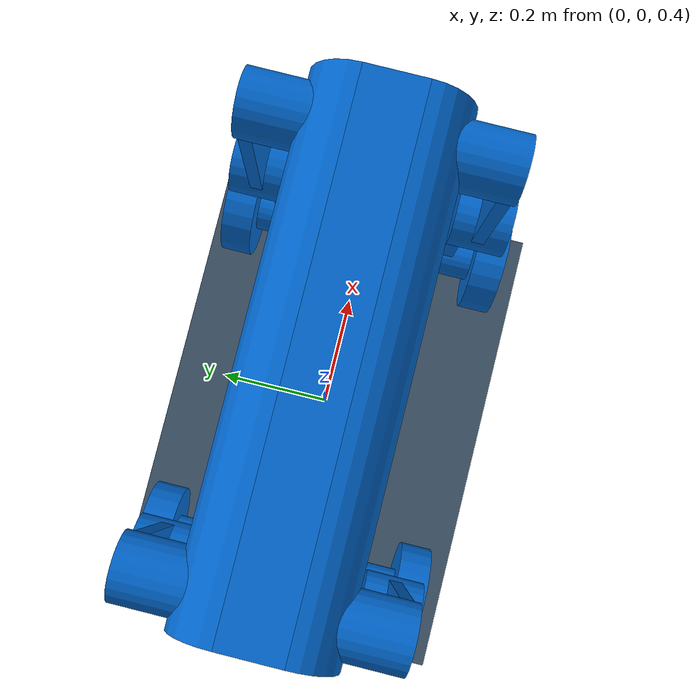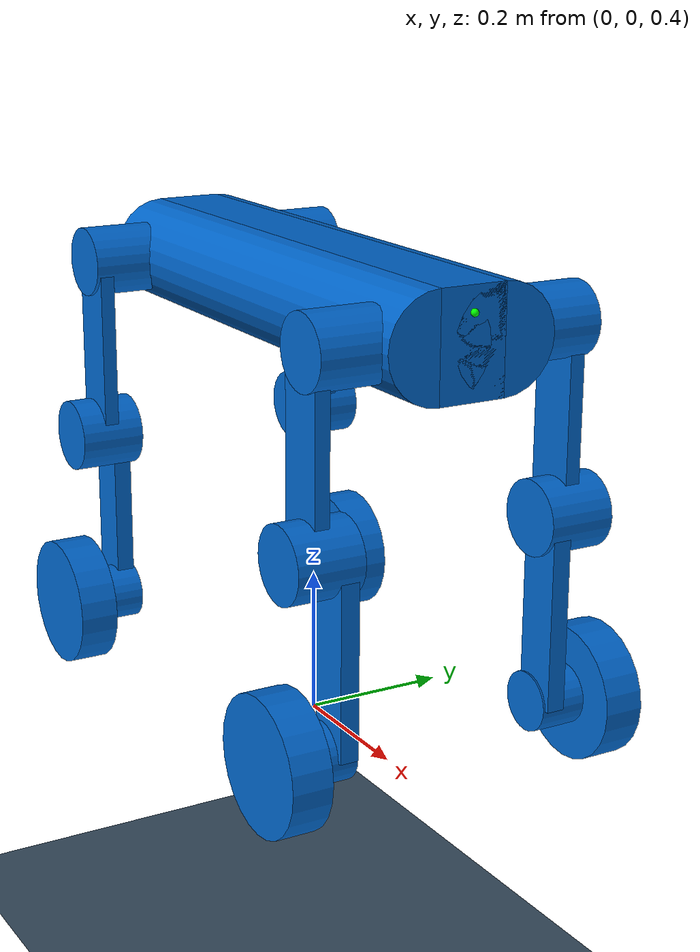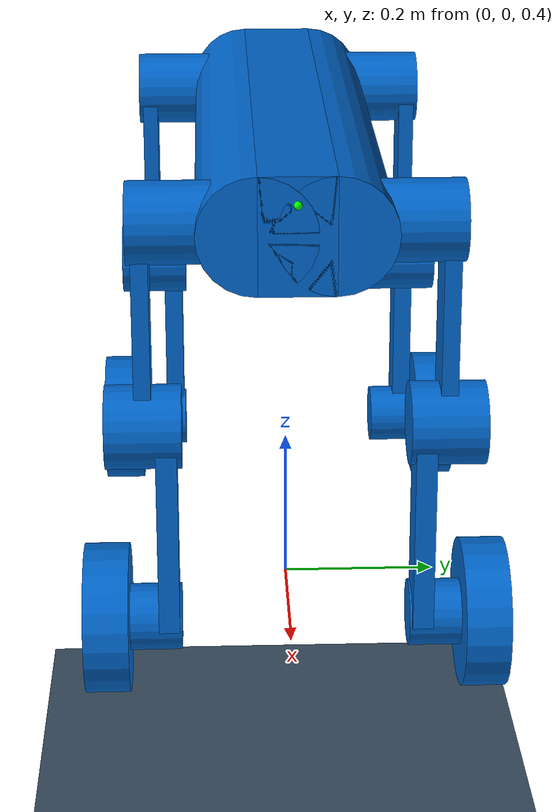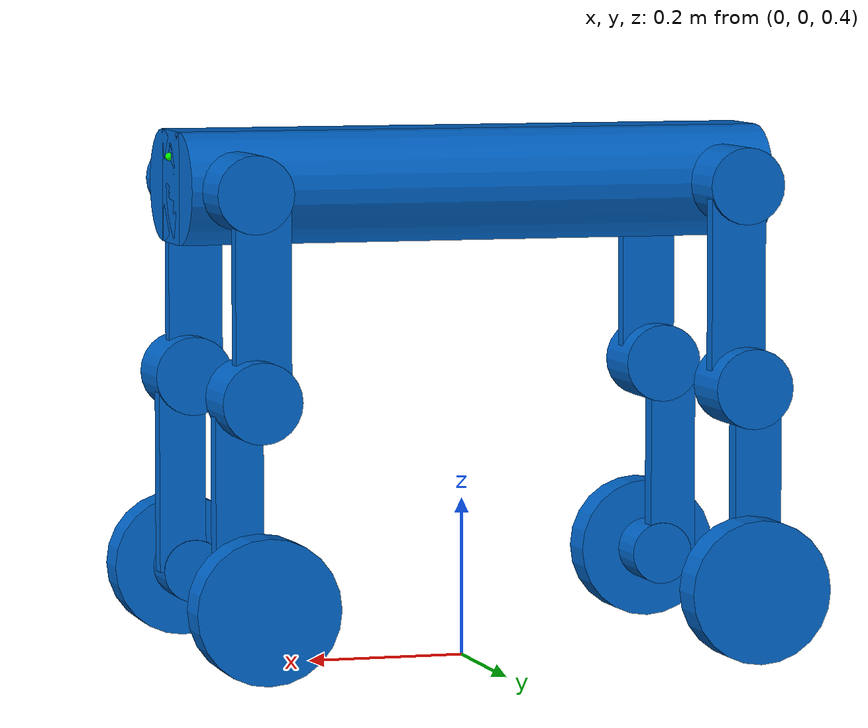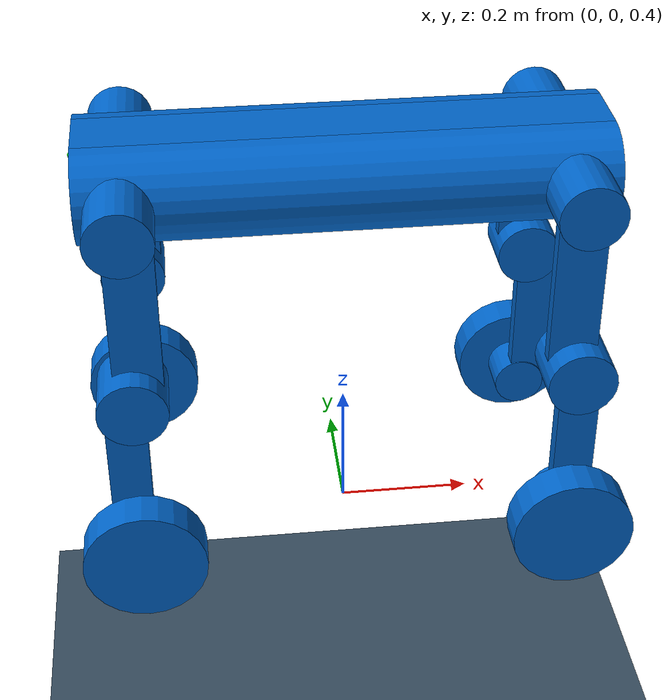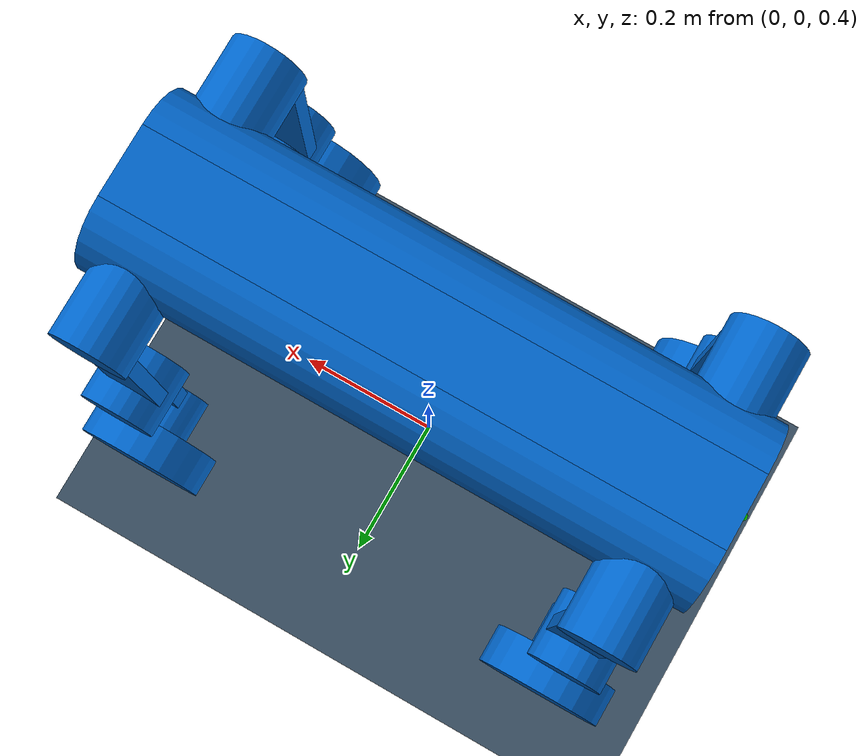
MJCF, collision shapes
<mujoco model="m20_scene">
  <include file="../model/robot.xml"/>
  <compiler meshdir="../model/assets"/>

  <statistic center="0 0 0.1" extent="1.0"/>
  <visual>
    <headlight diffuse="0.82 0.86 0.9" ambient="0.42 0.48 0.54" specular="0.15 0.15 0.18"/>
    <global azimuth="120" elevation="-20"/>
  </visual>
  <asset>
    <texture type="skybox" builtin="gradient" rgb1="0.3 0.5 0.7" rgb2="0 0 0" width="512" height="3072"/>
    <texture type="2d" name="groundplane" builtin="checker" mark="edge" rgb1="0.28 0.38 0.46" rgb2="0.16 0.23 0.30" markrgb="0.56 0.64 0.70" width="300" height="300"/>
    <material name="groundplane" texture="groundplane" texuniform="true" texrepeat="5 5" reflectance="0.2"/>
  </asset>
  <worldbody>
    <light pos="0 0 3" dir="0 0 -1" directional="true"/>
    <geom name="floor" size="0 0 0.05" type="plane" material="groundplane" friction="0.8 0.02 0.01"/>
  </worldbody>
</mujoco>

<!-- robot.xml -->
<mujoco model="M20">

    <default>
        <default class="robot">
            <default class="motor">
                <joint/>
                <motor/>
            </default>
            <default class="visual">
                <geom material="default_material" contype="0" conaffinity="0" group="2"/>
            </default>
            <default class="collision">
                <geom material="collision_material" condim="3" contype="1" conaffinity="1" solref="0.005 1"
                      friction="1 0.01 0.001" density="0" group="1"/>
            </default>
        </default>
    </default>

    <compiler angle="radian" meshdir="assets" />
  <!-- timestep 不在此声明：运行时统一取 contract_v3.json control.physics_hz -->
  <option gravity="0 0 -9.81" integrator="implicitfast" cone="elliptic" impratio="100" />
    <compiler autolimits="true"/>

    <asset>
        <material name="default_material" rgba="0.7 0.7 0.7 1"/>
        <material name="collision_material" rgba="0.0 0.4 0.8 0.2"/>
        <mesh name="base_link" file="base_link.STL"/>
        <mesh name="fl_hipx" file="fl_hipx.STL"/>
        <mesh name="fl_hipy" file="fl_hipy.STL"/>
        <mesh name="fl_knee" file="fl_knee.STL"/>
        <mesh name="fl_wheel" file="fl_wheel.STL"/>
        <mesh name="fr_hipx" file="fr_hipx.STL"/>
        <mesh name="fr_hipy" file="fr_hipy.STL"/>
        <mesh name="fr_knee" file="fr_knee.STL"/>
        <mesh name="fr_wheel" file="fr_wheel.STL"/>
        <mesh name="hl_hipx" file="hl_hipx.STL"/>
        <mesh name="hl_hipy" file="hl_hipy.STL"/>
        <mesh name="hl_knee" file="hl_knee.STL"/>
        <mesh name="hl_wheel" file="hl_wheel.STL"/>
        <mesh name="hr_hipx" file="hr_hipx.STL"/>
        <mesh name="hr_hipy" file="hr_hipy.STL"/>
        <mesh name="hr_knee" file="hr_knee.STL"/>
        <mesh name="hr_wheel" file="hr_wheel.STL"/>
        <texture name="texplane" type="2d" builtin="checker" rgb1=".2 .3 .4" rgb2=".1 0.15 0.2"
                 width="512" height="512"/>
        <material name='MatPlane' reflectance='0.3' texture="texplane" texrepeat="1 1" texuniform="true"/>
    </asset>

    <worldbody>
        <!-- 灯光 -->
        <light directional="true" pos="-0.5 0.5 3" dir="0 0 -1"/>

        <body name="base_link" pos="0 0. 1." quat="1 0 0 0" childclass="robot">
            <freejoint name="floating_base"/>
            <inertial pos="0.00355105878308153 0.0016507579200937 -0.00346462146571654"
                      quat="1 0 0 0"
                      mass="15.882" diaginertia="0.087919 0.533522 0.563492"/>

            <site name="imu_site" pos="0.0632 -0.0268 -0.0435" size="0.005" rgba="1 0 0 1"/>
            <site name="base_site" pos="0 0 0" quat="1 0 0 0"/>

            <!-- CA9B sensor frames. Translations are converted from millimeters to meters. -->
            <site name="front_camera" pos="0.37646 0 0.03738" size="0.005" rgba="0 1 0 1"/>
            <site name="rear_camera" pos="-0.37646 0 0.03738" size="0.005" rgba="0 1 0 1"/>
            <site name="front_lidar" pos="0.32028 0 -0.013" size="0.005" rgba="0 0 1 1"/>
            <site name="rear_lidar" pos="-0.32028 0 -0.013" size="0.005" rgba="0 0 1 1"/>

            <geom type="mesh" mesh="base_link" class="visual"/>
            <geom size="0.375 0.045 0.07" type="box" class="collision"/>
            <geom size="0.07 0.375" pos="0 0.045 0" quat="0.707107 0 0.707107 0" type="cylinder" class="collision"/>
            <geom size="0.07 0.375" pos="0 -0.045 0" quat="0.707107 0 0.707107 0" type="cylinder" class="collision"/>

            <body name="fl_hipx" pos="0.3141 0.0685 0">
                <inertial pos="-0.0111893 0.00891693 0.000405666" quat="0.581628 0.481707 0.465607 0.461387"
                          mass="0.259964"
                          diaginertia="0.000374402 0.000286289 0.000179309"/>
                <joint name="fl_hipx_joint" pos="0 0 0" axis="-1 0 0" range="-0.436 0.611"
                       actuatorfrcrange="-76.4 76.4" armature="0.01" frictionloss="0"/>
                <geom type="mesh" mesh="fl_hipx" class="visual"/>
                <geom size="0.048 0.07" pos="0 0.055 0" quat="0.707107 0.707107 0 0" type="cylinder" class="collision"/>
                <body name="fl_hipy">
                    <inertial pos="-0.00199375 0.098439 -0.130664" quat="0.6754 -0.0565887 0.0622156 0.73264"
                              mass="2.618"
                              diaginertia="0.0410181 0.0408067 0.00297328"/>
                    <joint name="fl_hipy_joint" pos="0 0 0" axis="0 -1 0" range="-2.286 2.583"
                           actuatorfrcrange="-76.4 76.4" armature="0.01" frictionloss="0"/>
                    <geom type="mesh" mesh="fl_hipy" class="visual"/>
                    <geom size="0.035 0.01 0.125" pos="-0.01 0.11 -0.125" type="box" class="collision"/>
                    <geom size="0.05 0.045" pos="0 0.11 -0.25" quat="0.707107 0.707107 0 0" type="cylinder"
                          class="collision"/>
                    <body name="fl_knee" pos="0 0.0984 -0.25">
                        <inertial pos="0.00341917 0.00269124 -0.181265" quat="0.633405 -0.0508555 0.0475887 0.77068"
                                  mass="1.145" diaginertia="0.0121304 0.0117245 0.000948105"/>
                        <joint name="fl_knee_joint" pos="0 0 0" axis="0 -1 0" range="-2.809 2.792"
                               actuatorfrcrange="-76.4 76.4" armature="0.01" frictionloss="0"/>
                        <geom type="mesh" mesh="fl_knee" class="visual"/>
                        <geom size="0.03 0.0125 0.125" pos="0.015 -0.015 -0.125" type="box" class="collision"/>
                        <geom size="0.04 0.05" pos="0 0.02 -0.25" quat="0.707107 0.707107 0 0" type="cylinder"
                              class="collision"/>
                        <body name="fl_wheel" pos="0 0.059676 -0.25">
                            <inertial pos="-3.11398e-07 0.000279002 5.70329e-07" quat="0.707107 0 0 0.707107"
                                      mass="0.638"
                                      diaginertia="0.002853 0.001535 0.001535"/>
                            <joint name="fl_wheel_joint" pos="0 0 0" axis="0 -1 0" actuatorfrcrange="-21.6 21.6" armature="0.01" frictionloss="0"/>
                            <geom type="mesh" mesh="fl_wheel" class="visual"/>
                            <geom size="0.09 0.027" quat="0.707107 0.707107 0 0" type="cylinder" class="collision"/>
                        </body>
                    </body>
                </body>
            </body>
            <body name="fr_hipx" pos="0.3141 -0.0685 0">
                <inertial pos="-0.0110901 -0.00875035 0.000521421" quat="0.461387 0.465607 0.481707 0.581628"
                          mass="0.259964" diaginertia="0.000374402 0.000286289 0.000179309"/>
                <joint name="fr_hipx_joint" pos="0 0 0" axis="-1 0 0" range="-0.611 0.436"
                       actuatorfrcrange="-76.4 76.4" armature="0.01" frictionloss="0"/>
                <geom type="mesh" mesh="fr_hipx" class="visual"/>
                <geom size="0.048 0.07" pos="0 -0.055 0" quat="0.707107 0.707107 0 0" type="cylinder"
                      class="collision"/>
                <body name="fr_hipy">
                    <inertial pos="-0.00229992 -0.0989709 -0.130925" quat="0.6964 0.0586688 -0.0587886 0.712831"
                              mass="2.618" diaginertia="0.0407542 0.040538 0.00301281"/>
                    <joint name="fr_hipy_joint" pos="0 0 0" axis="0 -1 0" range="-2.286 2.583"
                           actuatorfrcrange="-76.4 76.4" armature="0.01" frictionloss="0"/>
                    <geom type="mesh" mesh="fr_hipy" class="visual"/>
                    <geom size="0.035 0.01 0.125" pos="-0.01 -0.11 -0.125" type="box" class="collision"/>
                    <geom size="0.05 0.045" pos="0 -0.11 -0.25" quat="0.707107 0.707107 0 0" type="cylinder"
                          class="collision"/>
                    <body name="fr_knee" pos="0 -0.0984 -0.25">
                        <inertial pos="0.00354945 -0.00247884 -0.180089" quat="0.769194 0.0472982 -0.0504711 0.635261"
                                  mass="1.145" diaginertia="0.0122564 0.0118448 0.000951718"/>
                        <joint name="fr_knee_joint" pos="0 0 0" axis="0 -1 0" range="-2.809 2.792"
                               actuatorfrcrange="-76.4 76.4" armature="0.01" frictionloss="0"/>
                        <geom type="mesh" mesh="fr_knee" class="visual"/>
                        <geom size="0.03 0.0125 0.125" pos="0.015 0.015 -0.125" type="box" class="collision"/>
                        <geom size="0.04 0.05" pos="0 -0.02 -0.25" quat="0.707107 0.707107 0 0" type="cylinder"
                              class="collision"/>
                        <body name="fr_wheel" pos="0 -0.059676 -0.25">
                            <inertial pos="-6.47327e-07 -0.000279012 -4.6242e-08" quat="0.707107 0 0 0.707107"
                                      mass="0.638"
                                      diaginertia="0.002853 0.001535 0.001535"/>
                            <joint name="fr_wheel_joint" pos="0 0 0" axis="0 -1 0" actuatorfrcrange="-21.6 21.6" armature="0.01" frictionloss="0"/>
                            <geom type="mesh" mesh="fr_wheel" class="visual"/>
                            <geom size="0.09 0.027" quat="0.707107 0.707107 0 0" type="cylinder" class="collision"/>
                        </body>
                    </body>
                </body>
            </body>
            <body name="hl_hipx" pos="-0.3141 0.0685 0">
                <inertial pos="0.0110901 0.00875014 0.000524884" quat="0.465607 0.461387 0.581628 0.481707"
                          mass="0.259964"
                          diaginertia="0.000374402 0.000286289 0.000179309"/>
                <joint name="hl_hipx_joint" pos="0 0 0" axis="-1 0 0" range="-0.436 0.611"
                       actuatorfrcrange="-76.4 76.4" armature="0.01" frictionloss="0"/>
                <geom type="mesh" mesh="hl_hipx" class="visual"/>
                <geom size="0.048 0.07" pos="0 0.055 0" quat="0.707107 0.707107 0 0" type="cylinder" class="collision"/>
                <body name="hl_hipy">
                    <inertial pos="0.00204343 0.0990227 -0.130697" quat="0.750359 -0.0628584 0.0546506 0.655761"
                              mass="2.618" diaginertia="0.0408376 0.0406211 0.00299727"/>
                    <joint name="hl_hipy_joint" pos="0 0 0" axis="0 -1 0" range="-2.583 2.286"
                           actuatorfrcrange="-76.4 76.4" armature="0.01" frictionloss="0"/>
                    <geom type="mesh" mesh="hl_hipy" class="visual"/>
                    <geom size="0.035 0.01 0.125" pos="0.01 0.11 -0.125" type="box" class="collision"/>
                    <geom size="0.05 0.045" pos="0 0.11 -0.25" quat="0.707107 0.707107 0 0" type="cylinder"
                          class="collision"/>
                    <body name="hl_knee" pos="0 0.0984 -0.25">
                        <inertial pos="-0.00354945 0.00247885 -0.180089" quat="0.769194 -0.0472982 0.0504711 0.635261"
                                  mass="1.145" diaginertia="0.0122564 0.0118448 0.000951718"/>
                        <joint name="hl_knee_joint" pos="0 0 0" axis="0 -1 0" range="-2.792 2.809"
                               actuatorfrcrange="-76.4 76.4" armature="0.01" frictionloss="0"/>
                        <geom type="mesh" mesh="hl_knee" class="visual"/>
                        <geom size="0.03 0.0125 0.125" pos="-0.015 0.015 -0.125" type="box" class="collision"/>
                        <geom size="0.04 0.05" pos="0 0.02 -0.25" quat="0.707107 0.707107 0 0" type="cylinder"
                              class="collision"/>
                        <body name="hl_wheel" pos="0 0.059676 -0.25">
                            <inertial pos="-6.07889e-07 0.000279009 2.1049e-07" quat="0.707107 0 0 0.707107"
                                      mass="0.638"
                                      diaginertia="0.002853 0.001535 0.001535"/>
                            <joint name="hl_wheel_joint" pos="0 0 0" axis="0 -1 0" actuatorfrcrange="-21.6 21.6" armature="0.01" frictionloss="0"/>
                            <geom type="mesh" mesh="hl_wheel" class="visual"/>
                            <geom size="0.09 0.027" quat="0.707107 0.707107 0 0" type="cylinder" class="collision"/>
                        </body>
                    </body>
                </body>
            </body>
            <body name="hr_hipx" pos="-0.3141 -0.0685 0">
                <inertial pos="0.0110902 -0.00875012 0.000524937" quat="0.481707 0.581628 0.461387 0.465607"
                          mass="0.259964"
                          diaginertia="0.000374402 0.000286289 0.000179309"/>
                <joint name="hr_hipx_joint" pos="0 0 0" axis="-1 0 0" range="-0.611 0.436"
                       actuatorfrcrange="-76.4 76.4" armature="0.01" frictionloss="0"/>
                <geom type="mesh" mesh="hr_hipx" class="visual"/>
                <geom size="0.048 0.07" pos="0 -0.055 0" quat="0.707107 0.707107 0 0" type="cylinder"
                      class="collision"/>
                <body name="hr_hipy">
                    <inertial pos="0.001992 -0.0983704 -0.130561" quat="0.676694 0.0567616 -0.0621797 0.731435"
                              mass="2.618"
                              diaginertia="0.0410109 0.0408028 0.00297526"/>
                    <joint name="hr_hipy_joint" pos="0 0 0" axis="0 -1 0" range="-2.583 2.286"
                           actuatorfrcrange="-76.4 76.4" armature="0.01" frictionloss="0"/>
                    <geom type="mesh" mesh="hr_hipy" class="visual"/>
                    <geom size="0.035 0.01 0.125" pos="0.01 -0.11 -0.125" type="box" class="collision"/>
                    <geom size="0.05 0.045" pos="0 -0.11 -0.25" quat="0.707107 0.707107 0 0" type="cylinder"
                          class="collision"/>
                    <body name="hr_knee" pos="0 -0.0984 -0.25">
                        <inertial pos="-0.00341053 -0.00270202 -0.181287" quat="0.63448 0.050937 -0.0475303 0.769793"
                                  mass="1.145" diaginertia="0.0121352 0.0117289 0.000948904"/>
                        <joint name="hr_knee_joint" pos="0 0 0" axis="0 -1 0" range="-2.792 2.809"
                               actuatorfrcrange="-76.4 76.4" armature="0.01" frictionloss="0"/>
                        <geom type="mesh" mesh="hr_knee" class="visual"/>
                        <geom size="0.03 0.0125 0.125" pos="-0.015 0.015 -0.125" type="box" class="collision"/>
                        <geom size="0.04 0.05" pos="0 -0.02 -0.25" quat="0.707107 0.707107 0 0" type="cylinder"
                              class="collision"/>
                        <body name="hr_wheel" pos="0 -0.059676 -0.25">
                            <inertial pos="6.09746e-07 -0.000279009 2.01314e-07" quat="0.707107 0 0 0.707107"
                                      mass="0.638"
                                      diaginertia="0.002853 0.001535 0.001535"/>
                            <joint name="hr_wheel_joint" pos="0 0 0" axis="0 -1 0" actuatorfrcrange="-21.6 21.6" armature="0.01" frictionloss="0"/>
                            <geom type="mesh" mesh="hr_wheel" class="visual"/>
                            <geom size="0.09 0.027" quat="0.707107 0.707107 0 0" type="cylinder" class="collision"/>
                        </body>
                    </body>
                </body>
            </body>
        </body>
    </worldbody>

    <actuator>
                <position name="fl_hipx_joint" joint="fl_hipx_joint" kp="80" kv="2" forcerange="-76.4 76.4" forcelimited="true" />
                <position name="fl_hipy_joint" joint="fl_hipy_joint" kp="80" kv="2" forcerange="-76.4 76.4" forcelimited="true" />
                <position name="fl_knee_joint" joint="fl_knee_joint" kp="80" kv="2" forcerange="-76.4 76.4" forcelimited="true" />
                <velocity name="fl_wheel_joint" joint="fl_wheel_joint" kv="0.6" forcerange="-21.6 21.6" forcelimited="true" />
                <position name="fr_hipx_joint" joint="fr_hipx_joint" kp="80" kv="2" forcerange="-76.4 76.4" forcelimited="true" />
                <position name="fr_hipy_joint" joint="fr_hipy_joint" kp="80" kv="2" forcerange="-76.4 76.4" forcelimited="true" />
                <position name="fr_knee_joint" joint="fr_knee_joint" kp="80" kv="2" forcerange="-76.4 76.4" forcelimited="true" />
                <velocity name="fr_wheel_joint" joint="fr_wheel_joint" kv="0.6" forcerange="-21.6 21.6" forcelimited="true" />
                <position name="hl_hipx_joint" joint="hl_hipx_joint" kp="80" kv="2" forcerange="-76.4 76.4" forcelimited="true" />
                <position name="hl_hipy_joint" joint="hl_hipy_joint" kp="80" kv="2" forcerange="-76.4 76.4" forcelimited="true" />
                <position name="hl_knee_joint" joint="hl_knee_joint" kp="80" kv="2" forcerange="-76.4 76.4" forcelimited="true" />
                <velocity name="hl_wheel_joint" joint="hl_wheel_joint" kv="0.6" forcerange="-21.6 21.6" forcelimited="true" />
                <position name="hr_hipx_joint" joint="hr_hipx_joint" kp="80" kv="2" forcerange="-76.4 76.4" forcelimited="true" />
                <position name="hr_hipy_joint" joint="hr_hipy_joint" kp="80" kv="2" forcerange="-76.4 76.4" forcelimited="true" />
                <position name="hr_knee_joint" joint="hr_knee_joint" kp="80" kv="2" forcerange="-76.4 76.4" forcelimited="true" />
                <velocity name="hr_wheel_joint" joint="hr_wheel_joint" kv="0.6" forcerange="-21.6 21.6" forcelimited="true" />
    </actuator>

    <contact>
        <exclude body1="base_link" body2="fl_hipx"/>
        <exclude body1="fl_hipx" body2="fl_hipy"/>
        <exclude body1="fl_hipy" body2="fl_knee"/>
        <exclude body1="fl_knee" body2="fl_wheel"/>

        <exclude body1="base_link" body2="fr_hipx"/>
        <exclude body1="fr_hipx" body2="fr_hipy"/>
        <exclude body1="fr_hipy" body2="fr_knee"/>
        <exclude body1="fr_knee" body2="fr_wheel"/>

        <exclude body1="base_link" body2="hl_hipx"/>
        <exclude body1="hl_hipx" body2="hl_hipy"/>
        <exclude body1="hl_hipy" body2="hl_knee"/>
        <exclude body1="hl_knee" body2="hl_wheel"/>

        <exclude body1="base_link" body2="hr_hipx"/>
        <exclude body1="hr_hipx" body2="hr_hipy"/>
        <exclude body1="hr_hipy" body2="hr_knee"/>
        <exclude body1="hr_knee" body2="hr_wheel"/>

    </contact>

    <sensor>
        <framequat name="base_quat" objtype="site" objname="base_site"/>
        <accelerometer site="imu_site"/>
        <gyro site="imu_site"/>

    </sensor>
</mujoco>
